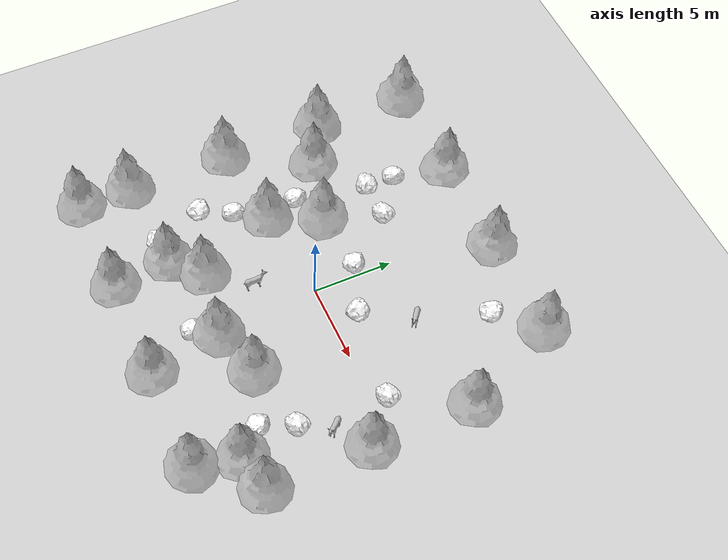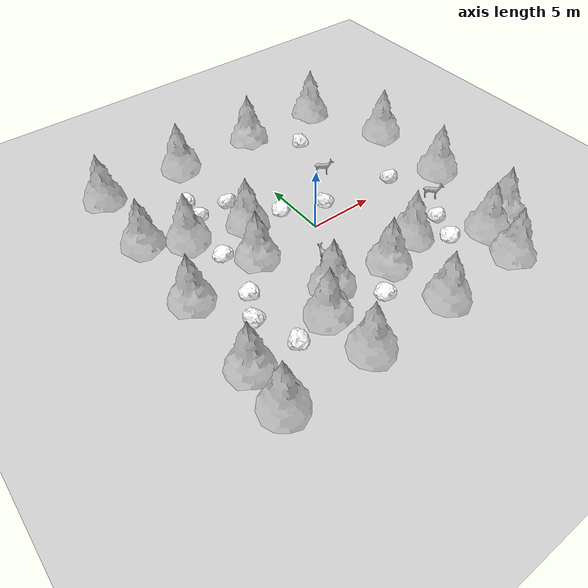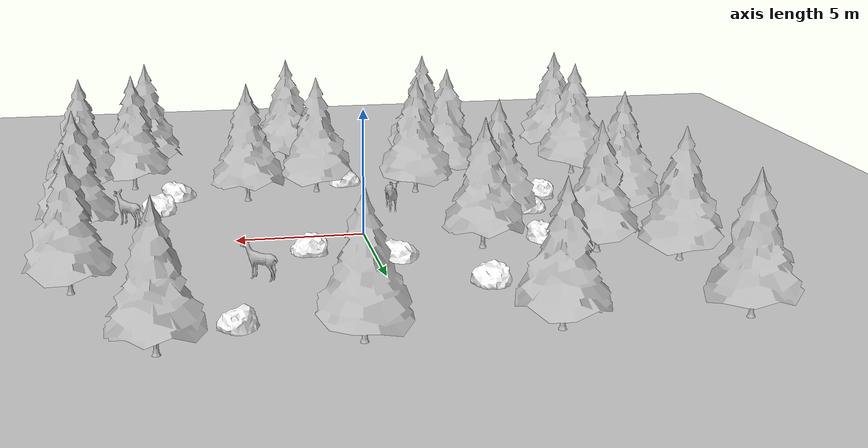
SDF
<sdf version="1.6">
 <world name="procedural_forest_seed_513012">
  <light type="directional" name="procedural_sun">
   <pose>0 0 15 0 0 0</pose>
   <diffuse>0.94 0.88 0.84 1.0</diffuse>
   <specular>0.15 0.15 0.15 1.0</specular>
   <attenuation>
    <range>1000</range>
    <constant>0.9</constant>
    <linear>0.01</linear>
    <quadratic>0.001</quadratic>
   </attenuation>
   <direction>0.049 0.605 -0.794</direction>
  </light>
  <include><uri>model://ground_plane</uri></include>
  <include>
   <name>perimeter_n_0</name>
   <uri>model://pine_tree</uri>
   <static>true</static>
   <pose>-11.0 11.0 0.0 0 0 -1.5975</pose>
  </include>
  <include>
   <name>perimeter_s_0</name>
   <uri>model://pine_tree</uri>
   <static>true</static>
   <pose>-11.0 -11.0 0.0 0 0 -3.0821</pose>
  </include>
  <include>
   <name>perimeter_n_2</name>
   <uri>model://pine_tree</uri>
   <static>true</static>
   <pose>-4.6 11.0 0.0 0 0 2.5263</pose>
  </include>
  <include>
   <name>perimeter_s_2</name>
   <uri>model://pine_tree</uri>
   <static>true</static>
   <pose>-4.6 -11.0 0.0 0 0 2.9709</pose>
  </include>
  <include>
   <name>perimeter_n_4</name>
   <uri>model://pine_tree</uri>
   <static>true</static>
   <pose>1.8 11.0 0.0 0 0 0.6384</pose>
  </include>
  <include>
   <name>perimeter_s_4</name>
   <uri>model://pine_tree</uri>
   <static>true</static>
   <pose>1.8 -11.0 0.0 0 0 -2.994</pose>
  </include>
  <include>
   <name>perimeter_n_6</name>
   <uri>model://pine_tree</uri>
   <static>true</static>
   <pose>8.2 11.0 0.0 0 0 -2.3441</pose>
  </include>
  <include>
   <name>perimeter_s_6</name>
   <uri>model://pine_tree</uri>
   <static>true</static>
   <pose>8.2 -11.0 0.0 0 0 -1.6215</pose>
  </include>
  <include>
   <name>perimeter_e_7</name>
   <uri>model://pine_tree</uri>
   <static>true</static>
   <pose>11.0 -7.8 0.0 0 0 0.1719</pose>
  </include>
  <include>
   <name>perimeter_w_7</name>
   <uri>model://pine_tree</uri>
   <static>true</static>
   <pose>-11.0 -7.8 0.0 0 0 -0.0588</pose>
  </include>
  <include>
   <name>perimeter_e_9</name>
   <uri>model://pine_tree</uri>
   <static>true</static>
   <pose>11.0 -1.4 0.0 0 0 2.6593</pose>
  </include>
  <include>
   <name>perimeter_w_9</name>
   <uri>model://pine_tree</uri>
   <static>true</static>
   <pose>-11.0 -1.4 0.0 0 0 -0.0521</pose>
  </include>
  <include>
   <name>perimeter_e_11</name>
   <uri>model://pine_tree</uri>
   <static>true</static>
   <pose>11.0 5.0 0.0 0 0 2.6142</pose>
  </include>
  <include>
   <name>perimeter_w_11</name>
   <uri>model://pine_tree</uri>
   <static>true</static>
   <pose>-11.0 5.0 0.0 0 0 -0.7068</pose>
  </include>
  <include>
   <name>deer_close_1</name>
   <uri>model://deer</uri>
   <static>true</static>
   <pose>-1.71 -3.324 0.0 0 0 1.5856</pose>
  </include>
  <include>
   <name>deer_medium_2</name>
   <uri>model://deer</uri>
   <static>true</static>
   <pose>4.343 4.612 0.0 0 0 -0.6622</pose>
  </include>
  <include>
   <name>deer_far_3</name>
   <uri>model://deer</uri>
   <static>true</static>
   <pose>8.98 -2.715 0.0 0 0 -0.8396</pose>
  </include>
  <include>
   <name>tree_3</name>
   <uri>model://pine_tree</uri>
   <static>true</static>
   <pose>4.051 -5.607 0.0 0 0 -2.0238</pose>
  </include>
  <include>
   <name>tree_4</name>
   <uri>model://pine_tree</uri>
   <static>true</static>
   <pose>-4.978 -7.461 0.0 0 0 1.6586</pose>
  </include>
  <include>
   <name>tree_6</name>
   <uri>model://pine_tree</uri>
   <static>true</static>
   <pose>8.798 -8.25 0.0 0 0 2.5308</pose>
  </include>
  <include>
   <name>tree_9</name>
   <uri>model://pine_tree</uri>
   <static>true</static>
   <pose>0.984 -6.562 0.0 0 0 -0.5538</pose>
  </include>
  <include>
   <name>tree_10</name>
   <uri>model://pine_tree</uri>
   <static>true</static>
   <pose>-3.261 -5.778 0.0 0 0 0.2884</pose>
  </include>
  <include>
   <name>tree_14</name>
   <uri>model://pine_tree</uri>
   <static>true</static>
   <pose>-4.195 2.383 0.0 0 0 -2.2478</pose>
  </include>
  <include>
   <name>tree_19</name>
   <uri>model://pine_tree</uri>
   <static>true</static>
   <pose>-8.314 3.538 0.0 0 0 2.7848</pose>
  </include>
  <include>
   <name>tree_20</name>
   <uri>model://pine_tree</uri>
   <static>true</static>
   <pose>-5.554 -0.736 0.0 0 0 0.0431</pose>
  </include>
  <include>
   <name>rock_1</name>
   <uri>model://rock</uri>
   <static>true</static>
   <pose>-6.86 1.651 0.0 0 0 2.9141</pose>
  </include>
  <include>
   <name>rock_2</name>
   <uri>model://rock</uri>
   <static>true</static>
   <pose>-7.246 -7.441 0.0 0 0 -1.3912</pose>
  </include>
  <include>
   <name>rock_3</name>
   <uri>model://rock</uri>
   <static>true</static>
   <pose>8.211 0.967 0.0 0 0 1.2412</pose>
  </include>
  <include>
   <name>rock_4</name>
   <uri>model://rock</uri>
   <static>true</static>
   <pose>-5.943 6.206 0.0 0 0 0.5284</pose>
  </include>
  <include>
   <name>rock_5</name>
   <uri>model://rock</uri>
   <static>true</static>
   <pose>5.577 8.988 0.0 0 0 -1.0802</pose>
  </include>
  <include>
   <name>rock_6</name>
   <uri>model://rock</uri>
   <static>true</static>
   <pose>6.94 -6.601 0.0 0 0 -3.0073</pose>
  </include>
  <include>
   <name>rock_7</name>
   <uri>model://rock</uri>
   <static>true</static>
   <pose>-8.351 -4.357 0.0 0 0 -0.3683</pose>
  </include>
  <include>
   <name>rock_8</name>
   <uri>model://rock</uri>
   <static>true</static>
   <pose>-5.963 8.105 0.0 0 0 2.4506</pose>
  </include>
  <include>
   <name>rock_9</name>
   <uri>model://rock</uri>
   <static>true</static>
   <pose>2.351 1.741 0.0 0 0 -0.1966</pose>
  </include>
  <include>
   <name>rock_10</name>
   <uri>model://rock</uri>
   <static>true</static>
   <pose>-0.41 -7.755 0.0 0 0 2.6787</pose>
  </include>
  <include>
   <name>rock_11</name>
   <uri>model://rock</uri>
   <static>true</static>
   <pose>-7.37 -2.346 0.0 0 0 2.4121</pose>
  </include>
  <include>
   <name>rock_12</name>
   <uri>model://rock</uri>
   <static>true</static>
   <pose>-0.881 2.996 0.0 0 0 -2.8597</pose>
  </include>
  <include>
   <name>rock_13</name>
   <uri>model://rock</uri>
   <static>true</static>
   <pose>-3.508 6.253 0.0 0 0 1.2432</pose>
  </include>
  <include>
   <name>rock_14</name>
   <uri>model://rock</uri>
   <static>true</static>
   <pose>7.825 -4.518 0.0 0 0 1.3544</pose>
  </include>
 </world>
</sdf>

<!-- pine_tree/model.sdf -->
<sdf version="1.6">
  <model name="pine_tree">
    <static>true</static>
    <link name="link">
      <collision name="collision">
        <geometry>
          <mesh>
            <uri>file://isr-testbed/pine_tree/meshes/pine_tree.dae</uri>
          </mesh>
        </geometry>
      </collision>
      <visual name="branch">
        <geometry>
          <mesh>
            <uri>file://isr-testbed/pine_tree/meshes/pine_tree.dae</uri>
            <submesh>
              <name>Branch</name>
            </submesh>
          </mesh>
        </geometry>
        <material>
          <script>
            <uri>file://isr-testbed/pine_tree/materials/scripts/</uri>
            <uri>file://isr-testbed/pine_tree/materials/textures/</uri>
            <name>PineTree/Branch</name>
          </script>
        </material>
      </visual>
      <visual name="bark">
        <geometry>
          <mesh>
            <uri>file://isr-testbed/pine_tree/meshes/pine_tree.dae</uri>
            <submesh>
              <name>Bark</name>
            </submesh>
          </mesh>
        </geometry>
        <material>
          <script>
            <uri>file://isr-testbed/pine_tree/materials/scripts/</uri>
            <uri>file://isr-testbed/pine_tree/materials/textures/</uri>
            <name>PineTree/Bark</name>
          </script>
        </material>
      </visual>
    </link>
  </model>
</sdf>

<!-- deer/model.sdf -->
<sdf version="1.6">
  <model name="deer">
    <static>true</static>
    <link name="body">
      <pose>0 0 0 0 0 0</pose>
      <visual name="visual">
        <geometry>
          <mesh>
            <uri>model://deer/meshes/deer.obj</uri>
            <scale>1.0 1.0 1.0</scale>
          </mesh>
        </geometry>
        <material>
          <script>
            <uri>model://deer/materials/scripts</uri>
            <uri>model://deer/materials/textures</uri>
            <name>Animal/Deer</name>
          </script>
        </material>
      </visual>
      <collision name="collision">
        <pose>0 0 0.7 0 0 0</pose>
        <geometry>
          <box>
            <size>1.4 0.6 1.4</size>
          </box>
        </geometry>
      </collision>
    </link>
  </model>
</sdf>

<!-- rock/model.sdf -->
<sdf version="1.6">
  <model name="rock">
    <static>true</static>
    <link name="base_link">
      <collision name="collision">
        <geometry>
          <mesh>
            <uri>model://rock/meshes/FallingRock01_Collider.dae</uri>
          </mesh>
        </geometry>
      </collision>
      <visual name="visual">
        <geometry>
          <mesh>
            <uri>model://rock/meshes/FallingRock01.dae</uri>
          </mesh>
        </geometry>
        <material>
          <diffuse>1.0 1.0 1.0</diffuse>
          <specular>0.2 0.2 0.2</specular>
          <script>
            <uri>model://rock/materials/scripts</uri>
            <uri>model://rock/materials/textures</uri>
            <name>FallingRocks/FallingRocks_Diffuse</name>
          </script>
        </material>
      </visual>
    </link>
  </model>
</sdf>
